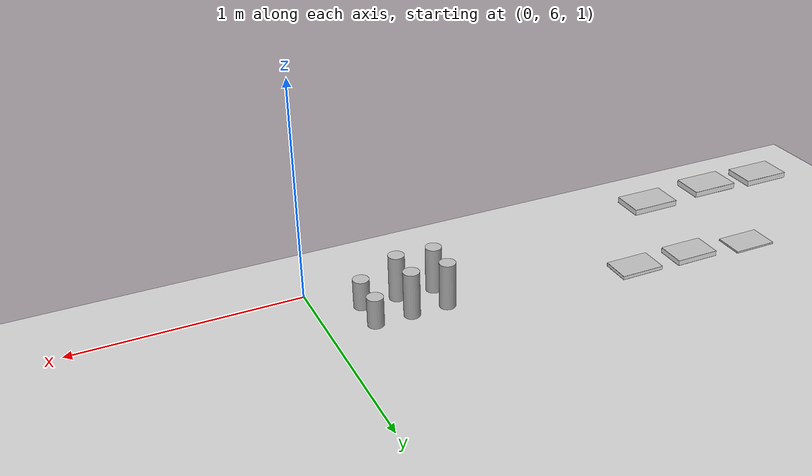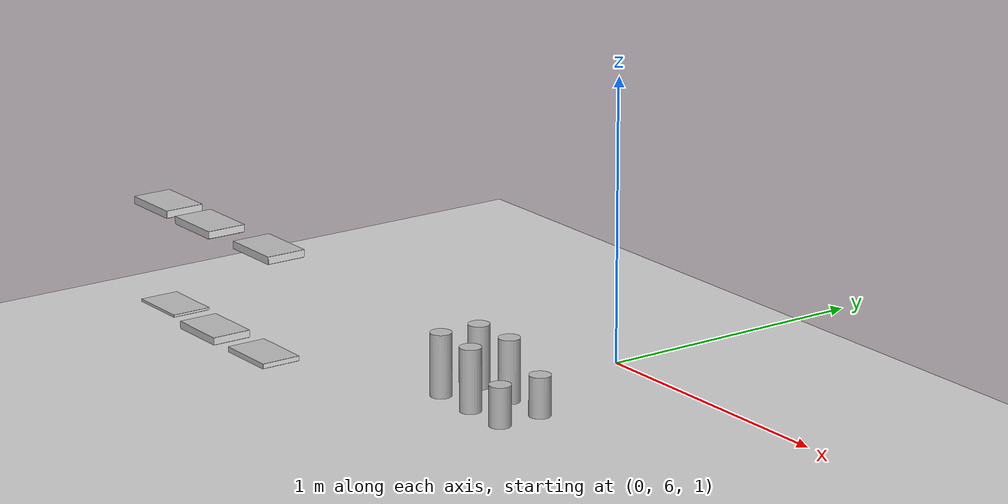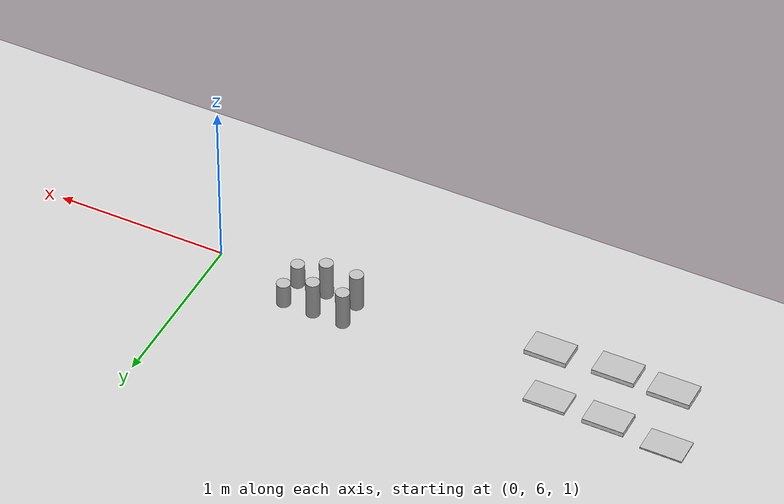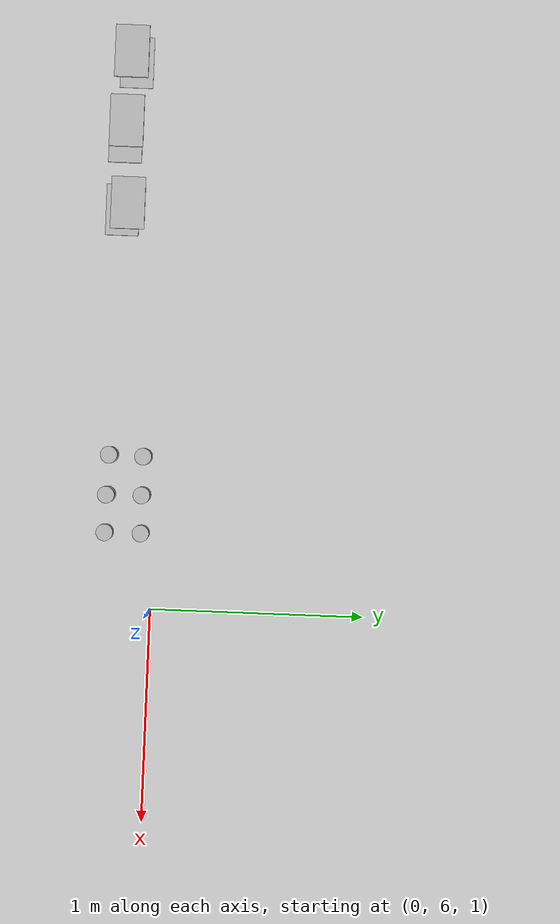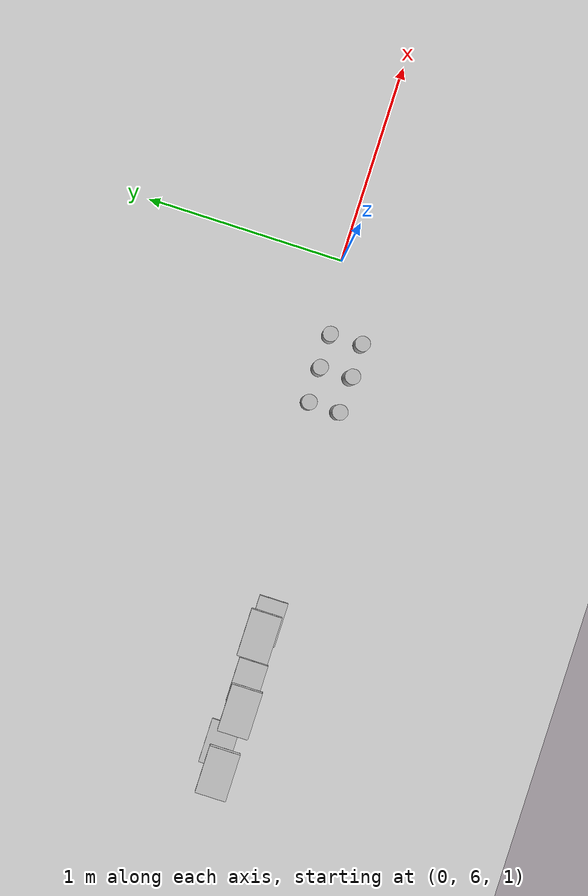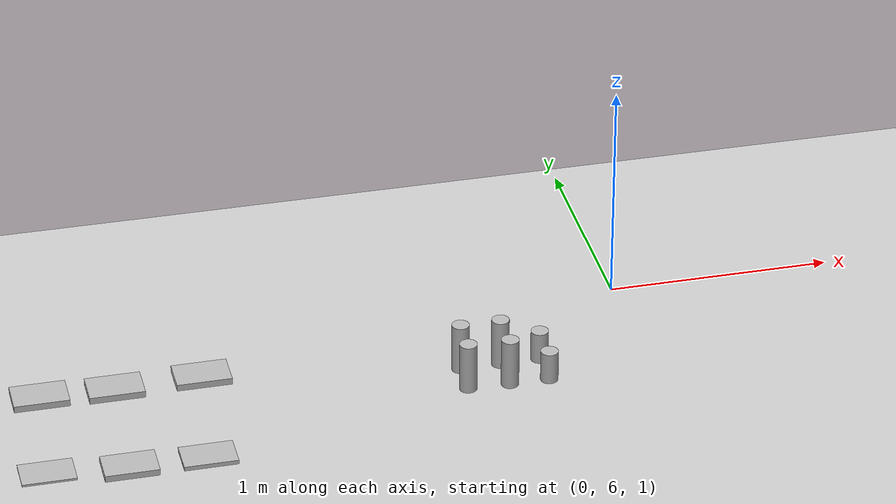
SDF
<sdf version="1.6">
 <world name="default">
  <model name="ground_plane">
   <static>1</static>
   <link name="link">
    <collision name="collision">
     <geometry><plane><normal>0 0 1</normal><size>100 100</size></plane></geometry>
     <surface>
      <contact><collide_bitmask>65535</collide_bitmask></contact>
      <friction><ode><mu>100</mu><mu2>50</mu2></ode></friction>
     </surface>
    </collision>
    <visual name="visual">
     <cast_shadows>0</cast_shadows>
     <geometry><plane><normal>0 0 1</normal><size>100 100</size></plane></geometry>
     <material>
      <script><uri>file://media/materials/scripts/gazebo.material</uri><name>Gazebo/Grey</name></script>
     </material>
    </visual>
   </link>
  </model>
  <model name="book_14">
   <link name="cover">
    <pose>0 -0.000108 0.015405 0 -0 0</pose>
    <visual name="visual">
     <geometry><box><size>0.245 0.16 0.03</size></box></geometry>
     <material>
      <script>
       <uri>model://book_14/materials/scripts</uri>
       <uri>model://book_14/materials/textures</uri>
       <name>book_14</name>
      </script>
     </material>
    </visual>
    <collision name="collision"><geometry><box><size>0.245 0.16 0.03</size></box></geometry></collision>
   </link>
   <link name="page">
    <pose>0 0.000608 0.015405 0 -0 0</pose>
    <visual name="visual">
     <geometry><box><size>0.24502 0.15862 0.028</size></box></geometry>
     <material>
      <lighting>1</lighting>
      <ambient>1 1 1 1</ambient>
      <diffuse>1 1 1 1</diffuse>
      <specular>0.01 0.01 0.01 1</specular>
      <emissive>0 0 0 1</emissive>
      <shader type="vertex"><normal_map>__default__</normal_map></shader>
     </material>
    </visual>
    <collision name="collision"><geometry><box><size>0.245 0.16 0.03</size></box></geometry></collision>
   </link>
   <static>1</static>
   <pose>-1.90323 5.81808 0.930488 0 -0 0</pose>
  </model>
  <model name="book_15">
   <link name="cover">
    <pose>0 -0.000108 0.015405 0 -0 0</pose>
    <visual name="visual">
     <geometry><box><size>0.245 0.16 0.03</size></box></geometry>
     <material>
      <script>
       <uri>model://book_15/materials/scripts</uri>
       <uri>model://book_15/materials/textures</uri>
       <name>book_15</name>
      </script>
     </material>
    </visual>
    <collision name="collision"><geometry><box><size>0.245 0.16 0.03</size></box></geometry></collision>
   </link>
   <link name="page">
    <pose>0 0.000608 0.015405 0 -0 0</pose>
    <visual name="visual">
     <geometry><box><size>0.24502 0.15862 0.028</size></box></geometry>
     <material>
      <lighting>1</lighting>
      <ambient>1 1 1 1</ambient>
      <diffuse>1 1 1 1</diffuse>
      <specular>0.01 0.01 0.01 1</specular>
      <emissive>0 0 0 1</emissive>
      <shader type="vertex"><normal_map>__default__</normal_map></shader>
     </material>
    </visual>
    <collision name="collision"><geometry><box><size>0.245 0.16 0.03</size></box></geometry></collision>
   </link>
   <static>1</static>
   <pose>-2.28945 5.79702 0.934898 0 -0 0</pose>
  </model>
  <model name="book_16">
   <link name="cover">
    <pose>0 -0.000108 0.015405 0 -0 0</pose>
    <visual name="visual">
     <geometry><box><size>0.245 0.16 0.03</size></box></geometry>
     <material>
      <script>
       <uri>model://book_16/materials/scripts</uri>
       <uri>model://book_16/materials/textures</uri>
       <name>book_16</name>
      </script>
     </material>
    </visual>
    <collision name="collision"><geometry><box><size>0.245 0.16 0.03</size></box></geometry></collision>
   </link>
   <link name="page">
    <pose>0 0.000608 0.015405 0 -0 0</pose>
    <visual name="visual">
     <geometry><box><size>0.24502 0.15862 0.028</size></box></geometry>
     <material>
      <lighting>1</lighting>
      <ambient>1 1 1 1</ambient>
      <diffuse>1 1 1 1</diffuse>
      <specular>0.01 0.01 0.01 1</specular>
      <emissive>0 0 0 1</emissive>
      <shader type="vertex"><normal_map>__default__</normal_map></shader>
     </material>
    </visual>
    <collision name="collision"><geometry><box><size>0.245 0.16 0.03</size></box></geometry></collision>
   </link>
   <static>1</static>
   <pose>-2.61718 5.80906 0.932649 0 -0 0</pose>
  </model>
  <model name="book_5">
   <link name="cover">
    <pose>0 -0.000108 0.01 0 -0 0</pose>
    <visual name="visual">
     <geometry><box><size>0.245 0.16 0.02</size></box></geometry>
     <material>
      <script>
       <uri>model://book_5/materials/scripts</uri>
       <uri>model://book_5/materials/textures</uri>
       <name>book_5</name>
      </script>
     </material>
    </visual>
    <collision name="collision"><geometry><box><size>0.245 0.16 0.02</size></box></geometry></collision>
   </link>
   <link name="page">
    <pose>0 0.000608 0.01 0 -0 0</pose>
    <visual name="visual">
     <geometry><box><size>0.24502 0.15862 0.018</size></box></geometry>
     <material>
      <lighting>1</lighting>
      <ambient>1 1 1 1</ambient>
      <diffuse>1 1 1 1</diffuse>
      <specular>0.01 0.01 0.01 1</specular>
      <emissive>0 0 0 1</emissive>
      <shader type="vertex"><normal_map>__default__</normal_map></shader>
     </material>
    </visual>
    <collision name="collision"><geometry><box><size>0.245 0.16 0.018</size></box></geometry></collision>
   </link>
   <static>1</static>
   <pose>-1.89229 5.77965 0.53216 0 -0 0</pose>
  </model>
  <model name="book_18">
   <link name="cover">
    <pose>0 -0.000108 0.015405 0 -0 0</pose>
    <visual name="visual">
     <geometry><box><size>0.245 0.16 0.03</size></box></geometry>
     <material>
      <script>
       <uri>model://book_18/materials/scripts</uri>
       <uri>model://book_18/materials/textures</uri>
       <name>book_18</name>
      </script>
     </material>
    </visual>
    <collision name="collision"><geometry><box><size>0.245 0.16 0.03</size></box></geometry></collision>
   </link>
   <link name="page">
    <pose>0 0.000608 0.015405 0 -0 0</pose>
    <visual name="visual">
     <geometry><box><size>0.24502 0.15862 0.028</size></box></geometry>
     <material>
      <lighting>1</lighting>
      <ambient>1 1 1 1</ambient>
      <diffuse>1 1 1 1</diffuse>
      <specular>0.01 0.01 0.01 1</specular>
      <emissive>0 0 0 1</emissive>
      <shader type="vertex"><normal_map>__default__</normal_map></shader>
     </material>
    </visual>
    <collision name="collision"><geometry><box><size>0.245 0.16 0.03</size></box></geometry></collision>
   </link>
   <static>1</static>
   <pose>-2.24322 5.78111 0.526858 0 -0 0</pose>
  </model>
  <model name="book_8">
   <link name="cover">
    <pose>0 -0.000108 0.005 0 -0 0</pose>
    <visual name="visual">
     <geometry><box><size>0.245 0.16 0.01</size></box></geometry>
     <material>
      <script>
       <uri>model://book_8/materials/scripts</uri>
       <uri>model://book_8/materials/textures</uri>
       <name>book_8</name>
      </script>
     </material>
    </visual>
    <collision name="collision"><geometry><box><size>0.245 0.16 0.01</size></box></geometry></collision>
   </link>
   <link name="page">
    <pose>0 0.000608 0.005 0 -0 0</pose>
    <visual name="visual">
     <geometry><box><size>0.24502 0.15862 0.008</size></box></geometry>
     <material>
      <lighting>1</lighting>
      <ambient>1 1 1 1</ambient>
      <diffuse>1 1 1 1</diffuse>
      <specular>0.01 0.01 0.01 1</specular>
      <emissive>0 0 0 1</emissive>
      <shader type="vertex"><normal_map>__default__</normal_map></shader>
     </material>
    </visual>
    <collision name="collision"><geometry><box><size>0.245 0.16 0.008</size></box></geometry></collision>
   </link>
   <static>1</static>
   <pose>-2.60436 5.82131 0.532086 0 -0 0</pose>
  </model>
  <model name="pringles_0">
   <static>0</static>
   <link name="link">
    <inertial>
     <mass>0.25</mass>
     <inertia><ixx>0</ixx><ixy>0</ixy><ixz>0</ixz><iyy>0</iyy><iyz>0</iyz><izz>0</izz></inertia>
    </inertial>
    <collision name="collision">
     <geometry><cylinder><radius>0.04</radius><length>0.235</length></cylinder></geometry>
    </collision>
    <visual name="visual">
     <geometry><cylinder><radius>0.04</radius><length>0.235</length></cylinder></geometry>
     <material>
      <script>
       <uri>model://pringles/material/scripts</uri>
       <uri>model://pringles/material/textures</uri>
       <name>Custom/pringles</name>
      </script>
     </material>
    </visual>
    <velocity_decay><linear>0</linear><angular>0</angular></velocity_decay>
   </link>
   <pose>-0.711846 5.93702 0.838501 0.000239 -0.00014 0.000397</pose>
  </model>
  <model name="pringles_1">
   <static>0</static>
   <link name="link">
    <inertial>
     <mass>0.25</mass>
     <inertia><ixx>0</ixx><ixy>0</ixy><ixz>0</ixz><iyy>0</iyy><iyz>0</iyz><izz>0</izz></inertia>
    </inertial>
    <collision name="collision">
     <geometry><cylinder><radius>0.04</radius><length>0.235</length></cylinder></geometry>
    </collision>
    <visual name="visual">
     <geometry><cylinder><radius>0.04</radius><length>0.235</length></cylinder></geometry>
     <material>
      <script>
       <uri>model://pringles/material/scripts</uri>
       <uri>model://pringles/material/textures</uri>
       <name>Custom/pringles</name>
      </script>
     </material>
    </visual>
    <velocity_decay><linear>0</linear><angular>0</angular></velocity_decay>
   </link>
   <pose>-0.714503 5.77566 0.838498 0.000193 -2.8e-05 0.000425</pose>
  </model>
  <model name="pringles2_2">
   <static>0</static>
   <link name="link">
    <inertial>
     <mass>0.25</mass>
     <inertia><ixx>0</ixx><ixy>0</ixy><ixz>0</ixz><iyy>0</iyy><iyz>0</iyz><izz>0</izz></inertia>
    </inertial>
    <collision name="collision">
     <pose>0 0 0.12 -3.14159 -0 0</pose>
     <geometry><cylinder><radius>0.04</radius><length>0.235</length></cylinder></geometry>
    </collision>
    <visual name="visual">
     <pose>0 0 0.12 -3.14159 -0 0</pose>
     <geometry><cylinder><radius>0.04</radius><length>0.235</length></cylinder></geometry>
     <material>
      <script>
       <uri>model://pringles2/material/scripts</uri>
       <uri>model://pringles2/material/textures</uri>
       <name>Custom/pringles2</name>
      </script>
     </material>
    </visual>
    <velocity_decay><linear>0</linear><angular>0</angular></velocity_decay>
   </link>
   <pose>-0.525773 5.76904 0.718504 0.000308 9.7e-05 2.4e-05</pose>
  </model>
  <model name="cocacola_0">
   <static>0</static>
   <link name="link">
    <inertial>
     <mass>0.25</mass>
     <inertia><ixx>0</ixx><ixy>0</ixy><ixz>0</ixz><iyy>0</iyy><iyz>0</iyz><izz>0</izz></inertia>
    </inertial>
    <collision name="collision">
     <pose>0 0 0.075 -3.14159 -0 0</pose>
     <geometry><cylinder><radius>0.04</radius><length>0.15</length></cylinder></geometry>
    </collision>
    <visual name="visual">
     <pose>0 0 0.075 -3.14159 -0 0</pose>
     <geometry><cylinder><radius>0.04</radius><length>0.15</length></cylinder></geometry>
     <material>
      <script>
       <uri>model://cocacola/material/scripts</uri>
       <uri>model://cocacola/material/textures</uri>
       <name>Custom/cocacola</name>
      </script>
     </material>
    </visual>
    <velocity_decay><linear>0</linear><angular>0</angular></velocity_decay>
   </link>
   <pose>-0.347432 5.93708 0.720997 3.7e-05 -0.000171 0.000218</pose>
  </model>
  <model name="cocacola_1">
   <static>0</static>
   <link name="link">
    <inertial>
     <mass>0.25</mass>
     <inertia><ixx>0</ixx><ixy>0</ixy><ixz>0</ixz><iyy>0</iyy><iyz>0</iyz><izz>0</izz></inertia>
    </inertial>
    <collision name="collision">
     <pose>0 0 0.075 -3.14159 -0 0</pose>
     <geometry><cylinder><radius>0.04</radius><length>0.15</length></cylinder></geometry>
    </collision>
    <visual name="visual">
     <pose>0 0 0.075 -3.14159 -0 0</pose>
     <geometry><cylinder><radius>0.04</radius><length>0.15</length></cylinder></geometry>
     <material>
      <script>
       <uri>model://cocacola/material/scripts</uri>
       <uri>model://cocacola/material/textures</uri>
       <name>Custom/cocacola</name>
      </script>
     </material>
    </visual>
    <velocity_decay><linear>0</linear><angular>0</angular></velocity_decay>
   </link>
   <pose>-0.345934 5.76601 0.720998 0.000175 -9e-05 -2e-05</pose>
  </model>
  <model name="pringles2">
   <static>0</static>
   <link name="link">
    <inertial>
     <mass>0.25</mass>
     <inertia><ixx>0</ixx><ixy>0</ixy><ixz>0</ixz><iyy>0</iyy><iyz>0</iyz><izz>0</izz></inertia>
    </inertial>
    <collision name="collision">
     <pose>0 0 0.12 -3.14159 -0 0</pose>
     <geometry><cylinder><radius>0.04</radius><length>0.235</length></cylinder></geometry>
    </collision>
    <visual name="visual">
     <pose>0 0 0.12 -3.14159 -0 0</pose>
     <geometry><cylinder><radius>0.04</radius><length>0.235</length></cylinder></geometry>
     <material>
      <script>
       <uri>model://pringles2/material/scripts</uri>
       <uri>model://pringles2/material/textures</uri>
       <name>Custom/pringles2</name>
      </script>
     </material>
    </visual>
    <velocity_decay><linear>0</linear><angular>0</angular></velocity_decay>
   </link>
   <pose>-0.52876 5.93707 0.718498 5.4e-05 -0.000179 -3.3e-05</pose>
  </model>
 </world>
</sdf>
